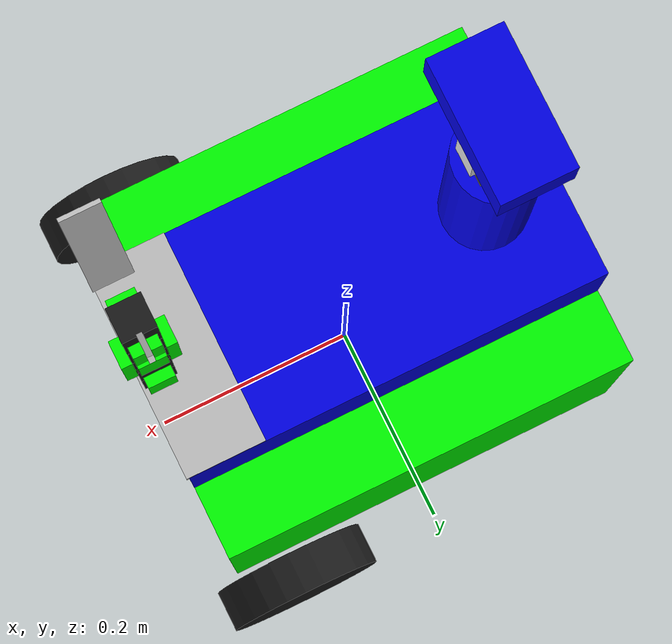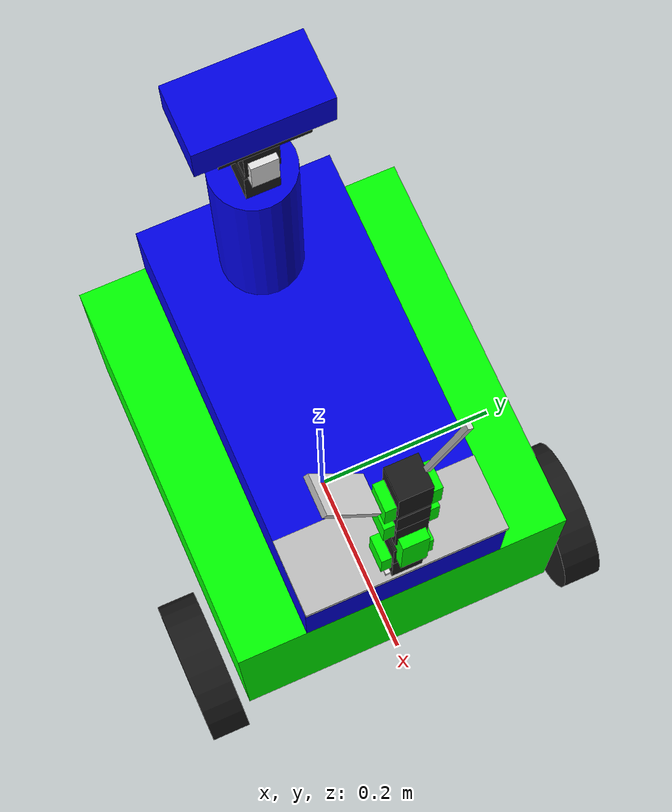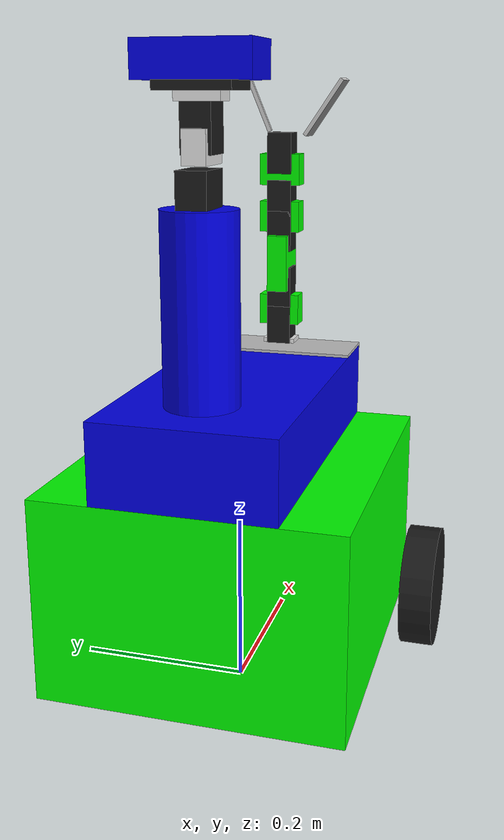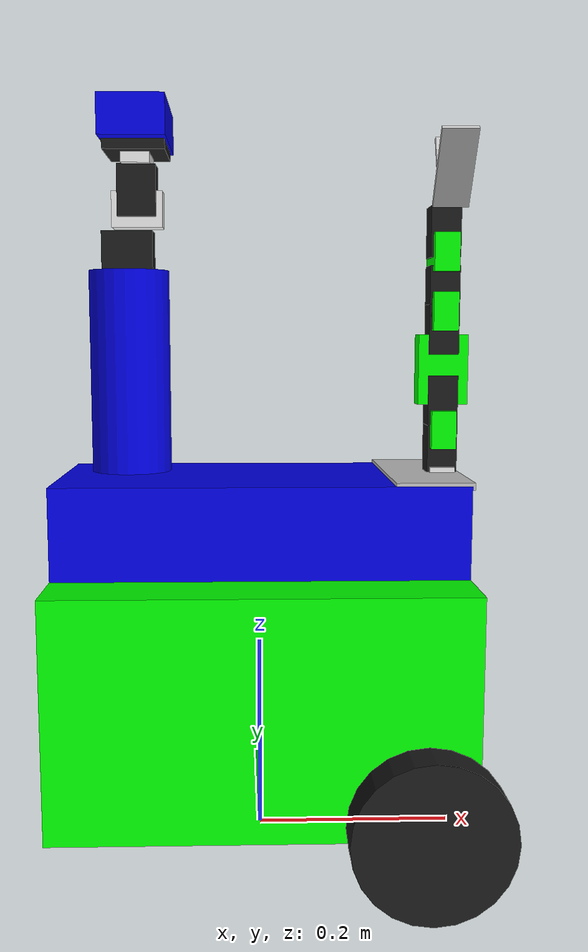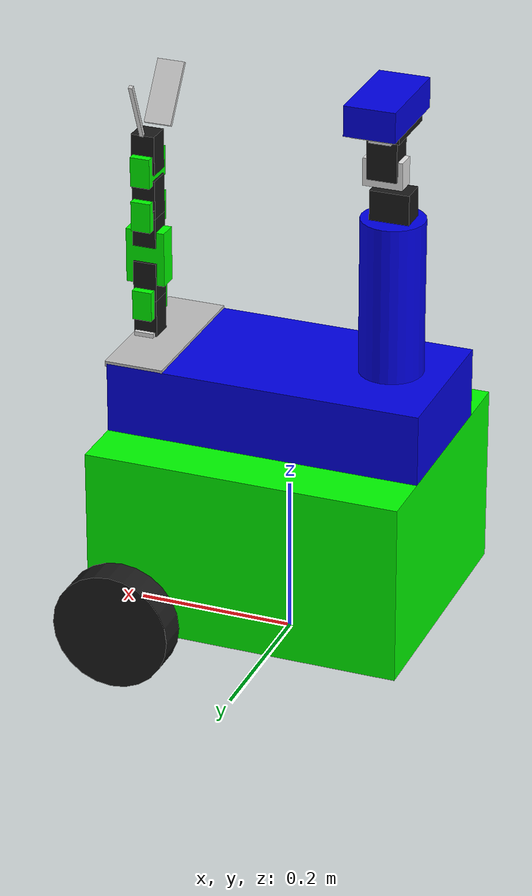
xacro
<?xml version="1.0"?>

<!-- XML namespaces -->
<robot xmlns:sensor="http://playerstage.sourceforge.net/gazebo/xmlschema/#sensor"
       xmlns:controller="http://playerstage.sourceforge.net/gazebo/xmlschema/#controller"
       xmlns:interface="http://playerstage.sourceforge.net/gazebo/xmlschema/#interface"
       xmlns:xacro="http://ros.org/wiki/xacro"

	   name="robbie">

    <property name="M_PI" value="3.14159"/>
    <property name="SCALE" value="0.0254"/>
    <property name="M_SCALE" value="0.001"/>

 	<!-- ============================  A Few Color Macros  ============================ -->

	<xacro:macro name="black">
		<material name="black">
			<color rgba="0.1 0.1 0.1 1.0"/>
		</material>
	</xacro:macro>

	<xacro:macro name="white">
		<material name="white">
			<color rgba="1.0 1.0 1.0 1.0"/>
		</material>
	</xacro:macro>

	<xacro:macro name="grey1">
		<material name="grey1">
			<color rgba="0.75 0.75 0.75 1.0"/>
		</material>
	</xacro:macro>

	<xacro:macro name="grey2">
		<material name="grey2">
			<color rgba="0.6 0.6 0.6 1.0"/>
		</material>
	</xacro:macro>

	<xacro:macro name="grey3">
		<material name="grey3">
			<color rgba="0.8 0.8 0.8 1.0"/>
		</material>
	</xacro:macro>

	<xacro:macro name="ax12_color">
		<material name="ax12_color">
			<color rgba="0.2 0.2 0.2 1.0"/>
		</material>
	</xacro:macro>

	<xacro:macro name="bracket_color">
		<material name="bracket_color">
			<color rgba="0.9 0.9 0.9 1.0"/>
		</material>
	</xacro:macro>

        <xacro:macro name="cyan1">
		<material name="cyan1">
			<color rgba="0 0.9 0.9 1.0"/>
		</material>
	</xacro:macro>

	<xacro:macro name="cyan2">
		<material name="cyan2">
	     <color rgba="0 0.7 0.7 1.0"/>
		</material>
	</xacro:macro>

	<xacro:macro name="cyan3">
		<material name="cyan3">
	     <color rgba="0 0.5 0.5 1.0"/>
		</material>
	</xacro:macro>

        <xacro:macro name="yellow2">
		<material name="yellow2">
			<color rgba="0.8 0.8 0 1.0"/>
		</material>
	</xacro:macro>

	<xacro:macro name="green1">
		<material name="green1">
			<color rgba="0 1 0 1.0"/>
		</material>
	</xacro:macro>

	<xacro:macro name="green2">
		<material name="green2">
			<color rgba="0.1 0.8 0 1.0"/>
		</material>
	</xacro:macro>

        <xacro:macro name="blue1">
		<material name="blue1">
			<color rgba="0 0 0.9 1.0"/>
		</material>
	</xacro:macro>

        <xacro:macro name="ax12_color">
		<material name="ax12_color">
			<color rgba="0.1 0.1 0.1 1.0"/>
		</material>
	</xacro:macro>

 	<!-- ============================   A Few Shape Macros  ============================ -->

	<xacro:macro name="ax12" params="name xyz rpy">
		<link name="${name}">
			<visual>
				<origin xyz="${xyz}" rpy="${rpy}" />
				<geometry>
					<box size="0.05 0.032 0.038" />
				</geometry>
				<xacro:ax12_color />
             </visual>
             <collision>
				<origin xyz="${xyz}" rpy="${rpy}" />
					<geometry>
						<box size="0.05 0.032 0.038" />
					</geometry>
             </collision>
             <xacro:default_inertial mass="0.055" />
        </link>
        <xacro:default_gazebo name="${name}" material="Gazebo/FlatBlack" />
	</xacro:macro>

	<xacro:macro name="bracket1" params="name xyz rpy">
		<link name="${name}">
			<visual>
				<origin xyz="${xyz}" rpy="${rpy}" />
				<geometry>
					<box size="0.05 0.025 0.035" />
				</geometry>
				<xacro:bracket_color />
             </visual>
             <collision>
				<origin xyz="${xyz}" rpy="${rpy}" />
					<geometry>
						<box size="0.05 0.025 0.038" />
					</geometry>
             </collision>
             <xacro:default_inertial mass="0.02" />
        </link>
        <xacro:default_gazebo name="${name}" material="Gazebo/WhiteEmissive" />
	</xacro:macro>

	<xacro:macro name="bracket_f3" params="name xyz rpy">
		<link name="${name}">
			<visual>
				<origin xyz="${xyz}" rpy="${rpy}" />
				<geometry>
					<box size="0.025 0.04 0.006" />
				</geometry>
				<xacro:bracket_color />
             </visual>
             <collision>
				<origin xyz="${xyz}" rpy="${rpy}" />
					<geometry>
						<box size="0.025 0.04 0.006" />
					</geometry>
             </collision>
             <xacro:default_inertial mass="0.02" />
        </link>
        <xacro:default_gazebo name="${name}" material="Gazebo/WhiteEmissive" />
	</xacro:macro>

	<xacro:macro name="bracket2" params="name xyz rpy">
		<link name="${name}">
			<visual>
				<origin xyz="${xyz}" rpy="${rpy}" />
				<geometry>
					<box size="0.05 0.115 0.07" />
				</geometry>
				<xacro:bracket_color />
             </visual>
             <collision>
				<origin xyz="${xyz}" rpy="${rpy}" />
					<geometry>
					<box size="0.05 0.115 0.07" />
					</geometry>
             </collision>
             <xacro:default_inertial mass="0.01" />
        </link>
        <xacro:default_gazebo name="${name}" material="Gazebo/WhiteEmissive" />
	</xacro:macro>

        <xacro:macro name="bracket3" params="name xyz rpy">
		<link name="${name}">
			<visual>
				<origin xyz="${xyz}" rpy="${rpy}" />
				<geometry>
					<box size="0.05 0.032 0.005" />
				</geometry>
				<xacro:bracket_color />
             </visual>
             <collision>
				<origin xyz="${xyz}" rpy="${rpy}" />
					<geometry>
					<box size="0.05 0.032 0.005" />
					</geometry>
             </collision>
             <xacro:default_inertial mass="0.01" />
        </link>
        <xacro:default_gazebo name="${name}" material="Gazebo/WhiteEmissive" />
	</xacro:macro>

        <xacro:macro name="h_beam" params="name xyz rpy">
		<link name="${name}">
			<visual>
				<origin xyz="${xyz}" rpy="${rpy}" />
				<geometry>
					<box size="0.025 0.11 0.01" />
				</geometry>
				<xacro:bracket_color />
             </visual>
             <collision>
				<origin xyz="${xyz}" rpy="${rpy}" />
					<geometry>
					<box size="0.025 0.11 0.01" />
					</geometry>
             </collision>
             <xacro:default_inertial mass="0.01" />
        </link>
        <xacro:default_gazebo name="${name}" material="Gazebo/WhiteEmissive" />
	</xacro:macro>

        <xacro:macro name="my_box" params="name lwh xyz rpy mass material *rviz_color">
		<link name="${name}">
			<visual>
				<origin xyz="${xyz}" rpy="${rpy}" />
				<geometry>
					<box size="${lwh}" />
				</geometry>
			    <xacro:insert_block name="rviz_color" />
             </visual>
             <collision>
				<origin xyz="${xyz}" rpy="${rpy}" />
					<geometry>
						<box size="${lwh}" />
					</geometry>
             </collision>
             <xacro:default_inertial mass="${mass}" />
        </link>
        <xacro:default_gazebo name="${name}" material="${material}" />
	</xacro:macro>

	<xacro:macro name="my_cylinder" params="name l r xyz rpy mass material *rviz_color">
		<link name="${name}">
			<visual>
				<origin xyz="${xyz}" rpy="${rpy}" />
				<geometry>
					<cylinder length="${l}" radius="${r}" />
				</geometry>
            	<xacro:insert_block name="rviz_color" />
            </visual>
            <collision>
				<origin xyz="${xyz}" rpy="${rpy}" />
					<geometry>
						<cylinder length="${l}" radius="${r}" />
					</geometry>
            </collision>
            <xacro:default_inertial mass="${mass}" />
        </link>
        <xacro:default_gazebo name="${name}" material="${material}" />
	</xacro:macro>

    <xacro:macro name="default_inertial" params="mass">
		<inertial>
			<mass value="${mass}" />
			<inertia ixx="0.001" ixy="0.0" ixz="0.0"
                     iyy="0.001" iyz="0.0"
                     izz="0.001" />
			</inertial>
    </xacro:macro>

    <xacro:macro name="default_gazebo" params="name material">
 		<gazebo reference="${name}">
			<material>${material}</material>
			<selfCollide>false</selfCollide>
			<turnGravityOff>true</turnGravityOff>
		</gazebo>
    </xacro:macro>

 	<!-- ============================   Link Definitions  ============================ -->

  <xacro:my_box name="base_link" lwh="0.4 0.34 0.23" xyz="0 0 .17" rpy="0 0 0" mass="0.1" material="Gazebo/FlatBlack">
	        <xacro:green1 />
        </xacro:my_box>

  <xacro:my_cylinder name="r_wheel_link" l="0.04" r="0.075" xyz="0 0 0" rpy="1.57 0 0" mass="0.1" material="Gazebo/FlatBlack">
		<xacro:black />
        </xacro:my_cylinder>

  <xacro:my_cylinder name="l_wheel_link" l="0.04" r="0.075" xyz="0 0 0" rpy="1.57 0 0" mass="0.1" material="Gazebo/FlatBlack">
		<xacro:black />
        </xacro:my_cylinder>

  <xacro:my_box name="deck_link" lwh="0.4 0.2 0.09" xyz="0 0 0" rpy="0 0 0" mass="0.1" material="Gazebo/FlatBlack">
	        <xacro:blue1 />
        </xacro:my_box>

  <xacro:my_box name="arm_shoulder_tilt_link" lwh="0.075 0.2 0.007" xyz="0 0 0" rpy="0 0 0" mass="2.91" material="Gazebo/Grey">
		<xacro:grey1 />
	</xacro:my_box>

  <xacro:bracket_f3 name="arm_pan_tilt_bracket" xyz="0 0 0" rpy="0 0 0">
	</xacro:bracket_f3>

  <xacro:my_box name="elbow_tilt_link" lwh="0.03 0.03 0.05" xyz="0 0 0" rpy="0 0 0" mass="0.055" material="Gazebo/FlatBlack">
	     <xacro:ax12_color />
	</xacro:my_box>

  <xacro:my_box name="arm_tilt_link" lwh="0.03 0.03 0.05" xyz="0 0 0" rpy="0 0 0" mass="0.055" material="Gazebo/FlatBlack">
	     <xacro:ax12_color />
	</xacro:my_box>

  <xacro:my_box name="arm_bracket" lwh="0.025 0.05 0.038" xyz="0 0 0.021" rpy="0 0 0" mass="0.05" material="Gazebo/WhiteEmissive">
			<xacro:green1 />
		</xacro:my_box>

  <xacro:my_box name="elbow_bracket" lwh="0.05 0.025 0.07" xyz="0 0 0.021" rpy="0 0 0" mass="0.05" material="Gazebo/WhiteEmissive">
			<xacro:green1 />
		</xacro:my_box>

  <xacro:my_box name="wrist_pan_link" lwh="0.03 0.03 0.05" xyz="0 0 0.021" rpy="0 0 0" mass="0.055" material="Gazebo/FlatBlack">
	     <xacro:ax12_color />
	</xacro:my_box>

  <xacro:my_box name="wrist_bracket" lwh="0.025 0.05 0.038" xyz="0 0 0.021" rpy="0 0 0" mass="0.05" material="Gazebo/WhiteEmissive">
			<xacro:green1 />
		</xacro:my_box>

  <xacro:my_box name="wrist_tilt_link" lwh="0.03 0.03 0.05" xyz="0 0 0.021" rpy="0 0 0" mass="0.055" material="Gazebo/FlatBlack">
	     <xacro:ax12_color />
	</xacro:my_box>

  <xacro:my_box name="gripper_bracket" lwh="0.025 0.05 0.038" xyz="0 0 0.021" rpy="0 0 0" mass="0.05" material="Gazebo/WhiteEmissive">
			<xacro:green1 />
		</xacro:my_box>

  <xacro:my_box name="gripper_link" lwh="0.03 0.03 0.05" xyz="0 0 0.021" rpy="0 0 0" mass="0.055" material="Gazebo/FlatBlack">
	     <xacro:ax12_color />
	</xacro:my_box>

  <xacro:my_box name="right_finger_link" lwh="0.035 0.005 0.08" xyz="0 0 0.08" rpy="0 0 0" mass="0.1" material="Gazebo/FlatBlack">
	        <xacro:grey3 />
        </xacro:my_box>
  <xacro:my_box name="left_finger_link" lwh="0.005 0.005 0.08" xyz="0 0 0.08" rpy="0 0 0" mass="0.1" material="Gazebo/FlatBlack">
	        <xacro:grey3 />
        </xacro:my_box>

  <xacro:my_cylinder name="torso_link" l="0.20" r="0.04" xyz="0 0 0" rpy="0 0 0" mass="0.250" material="Gazebo/WhiteEmissive">
		<xacro:blue1 />
	</xacro:my_cylinder>

	<xacro:ax12 name="head_pan_link" xyz="0 0 0" rpy="0 0 0">
	</xacro:ax12>

	<xacro:bracket1 name="pan_tilt_bracket" xyz="0 0 0" rpy="0 0 0">
	</xacro:bracket1>

	<xacro:ax12 name="head_tilt_link" xyz="0 0 0" rpy="0 1.57 0">
	</xacro:ax12>

	<xacro:my_box name="neck_link" lwh="0.028 0.048 0.01" xyz="0 0 0.02" rpy="0 0 0" mass="0.05" material="Gazebo/WhiteEmissive">
		<xacro:bracket_color />
	</xacro:my_box>

	<xacro:my_box name="head_base_link" lwh="0.06 0.08 0.01" xyz="0 0 0" rpy="0 0 0" mass="0.1" material="Gazebo/FlatBlack">
		<xacro:black />
	</xacro:my_box>

	<xacro:my_cylinder name="head_post_link" l="0.01" r="0.005" xyz="0 0 0" rpy="0 0 0" mass="0.1" material="Gazebo/WhiteEmissive">
		<xacro:grey3 />
	</xacro:my_cylinder>

    <link name="kinect_link">
  <visual>
    <geometry>
      <box size="0.064 0.121 0.0381" />
    </geometry>
    <material name="black">
         <color rgba="0 0 0.9 1.0"/>
    </material>
  </visual>
  <inertial>
      <mass value="0.0001" />
      <origin xyz="0 0 0" />
      <inertia ixx="0.0001" ixy="0.0" ixz="0.0"
               iyy="0.0001" iyz="0.0"
               izz="0.0001" />
  </inertial>
  </link>

   <!-- =================== Joint Definitions ==================== -->
  <joint name="base_link_joint" type="fixed">
    	<parent link="base_link" />
    	<child link="deck_link" />
    	<origin xyz="0 0 .33" rpy="0 0 0" />
	</joint>

  <joint name="r_wheel_joint" type="fixed">
    	<parent link="base_link" />
    	<child link="r_wheel_link" />
    	<origin xyz="0.15 0.2 0.075" rpy="0 0 0" />
	</joint>

  <joint name="l_wheel_joint" type="fixed">
    	<parent link="base_link" />
    	<child link="l_wheel_link" />
    	<origin xyz="0.15 -0.2 0.075" rpy="0 0 0" />
	</joint>

  <joint name="arm_pan_tilt_bracket" type="fixed">
    	<parent link="deck_link" />
    	<child link="arm_shoulder_tilt_link" />
    	<origin xyz="0.165 0 .045" rpy="0 0 0" />
    	<axis xyz="0 0 1" />
    	<limit lower="-3.1416" upper="3.1416" effort="10" velocity="0" />
      	<dynamics damping="0.0"/>
	</joint>

  <joint name="shoulder_pan_joint" type="revolute">
    	<parent link="arm_shoulder_tilt_link" />
    	<child link="arm_pan_tilt_bracket" />
    	<origin xyz=".02 0 .006" rpy="0 0 0" />
        <axis xyz="0 0 1" />
    	<limit lower="-1.57" upper="1.57" effort="10" velocity="0" />
	</joint>

 <joint name="arm_tilt1_joint" type="fixed">
    	<parent link="arm_pan_tilt_bracket" />
    	<child link="arm_tilt_link" />
    	<origin xyz="0 0 0.02" rpy="0 0 0" />
    	<axis xyz="0 0 0" />
    	<limit lower="-1.57" upper="1.57" effort="10" velocity="0" />
      	<dynamics damping="0.0"/>
	</joint>

  <joint name="arm_tilt_joint" type="revolute">
    	<parent link="arm_tilt_link" />
    	<child link="arm_bracket" />
    	<origin xyz="0 0 0.0" rpy="0 0 0" />
    	<axis xyz="0 1 0" />
    	<limit lower="-1.57" upper="1.57" effort="10" velocity="0" />
      	<dynamics damping="0.0"/>
	</joint>

   <joint name="arm_bracket" type="fixed">
    	<parent link="arm_bracket" />
    	<child link="elbow_tilt_link" />
    	<origin xyz="0 0 0.05" rpy="0 0 0" />
	</joint>

  <joint name="elbow_tilt_joint" type="revolute">
    	<parent link="elbow_tilt_link" />
    	<child link="elbow_bracket" />
    	<origin xyz="0 0 0.01" rpy="0 0 0" />
    	<axis xyz="0 1 0" />
    	<limit lower="-1.57" upper="1.57" effort="10" velocity="0" />
      	<dynamics damping="0.0"/>
	</joint>

  <joint name="wrist_pan_joint" type="revolute">
    	<parent link="elbow_bracket" />
    	<child link="wrist_pan_link" />
    	<origin xyz="0 0 0.04" rpy="0 0 0" />
        <axis xyz="1 0 0" />
    	<limit lower="-3.1416" upper="3.1416" effort="10" velocity="0" />
      	<dynamics damping="0.0"/>
	</joint>

  <joint name="wrist_joint" type="fixed">
    	<parent link="wrist_pan_link" />
    	<child link="wrist_bracket" />
    	<origin xyz="0 0 0.018" rpy="0 0 0" />
	</joint>

   <joint name="wrist_tilt_joint" type="revolute">
    	<parent link="wrist_bracket" />
    	<child link="wrist_tilt_link" />
    	<origin xyz="0 0 0.02" rpy="0 0 0" />
    	<axis xyz="0 1 0" />
    	<limit lower="-1.57" upper="1.57" effort="10" velocity="0" />
      	<dynamics damping="0.0"/>
	</joint>

   <joint name="gripper_bracket" type="fixed">
    	<parent link="wrist_tilt_link" />
    	<child link="gripper_bracket" />
    	<origin xyz="0 0 0.038" rpy="0 0 0" />
	</joint>

   <joint name="gripper_link" type="fixed">
    	<parent link="gripper_bracket" />
    	<child link="gripper_link" />
    	<origin xyz="0 0 0.02" rpy="0 0 0" />
    	<axis xyz="0 1 0" />
    	<limit lower="-1.57" upper="1.57" effort="10" velocity="0" />
      	<dynamics damping="0.0"/>
	</joint>

   <joint name="palm_link" type="fixed">
    	<parent link="gripper_link" />
    	<child link="left_finger_link" />
    	<origin xyz="0 0.0 0.01" rpy="-0.4 0 0" />
	</joint>

  <joint name="gripper_joint" type="revolute">
    	<parent link="gripper_link" />
    	<child link="right_finger_link" />
    	<origin xyz="0 -0.01 0.01" rpy="0.6 0 0" />
    	<axis xyz="1 0 0" />
    	<limit lower="-0.98" upper="0.15" effort="10" velocity="0" />
      	<dynamics damping="0.0"/>
	</joint>

      <joint name="torso_joint" type="fixed">
    	<parent link="deck_link" />
    	<child link="torso_link" />
    	<origin xyz="-0.13 0 0.15" rpy="0 0 0" />
	</joint>

	<joint name="head_pan_servo" type="fixed">
    	<parent link="torso_link" />
    	<child link="head_pan_link" />
    	<origin xyz="0 0 0.119" rpy="0 0 0" />
	</joint>

	<joint name="pan_tilt_bracket" type="fixed">
    	<parent link="head_pan_link" />
    	<child link="pan_tilt_bracket" />
    	<origin xyz="0.01 0 0.04" rpy="0 0 0" />
	</joint>

	<joint name="head_pan_joint" type="revolute">
    	<parent link="pan_tilt_bracket" />
    	<child link="head_tilt_link" />
    	<origin xyz="0 0 0.0175" rpy="0 0 0" />
    	<axis xyz="0 0 1" />
    	<limit lower="-3.1416" upper="3.1416" effort="10" velocity="0" />
      	<dynamics damping="0.0"/>
	</joint>

 	<joint name="head_tilt_joint" type="revolute">
    	<parent link="head_tilt_link" />
    	<child link="neck_link" />
    	<origin xyz="0 0 0.01" rpy="0 0 0" />
    	<axis xyz="0 1 0" />
    	<limit lower="-1.57" upper="1.57" effort="10" velocity="0" />
      	<dynamics damping="0.0"/>
	</joint>

 	<joint name="neck_joint" type="fixed">
    	<parent link="neck_link" />
    	<child link="head_base_link" />
    	<origin xyz="0 0 0.03" rpy="0 0 0" />
	</joint>

	<joint name="head_base_joint" type="fixed">
    	<parent link="head_base_link" />
    	<child link="head_post_link" />
    	<origin xyz="0 0 0.0" rpy="0 0 0" />
	</joint>

	<joint name="head_joint" type="fixed">
    	<parent link="head_post_link" />
    	<child link="kinect_link" />
    	<origin xyz="0 0 0.0235" rpy="0 0 0" />
	</joint>

 <joint name="kinect_depth_joint" type="fixed">
      <origin xyz="0 0.018 0" rpy="0 0 0" />
      <parent link="kinect_link" />
      <child link="kinect_depth_frame" />
    </joint>

    <link name="kinect_depth_frame">
      <inertial>
        <mass value="0.0001" />
        <origin xyz="0 0 0" />
        <inertia ixx="0.0001" ixy="0.0" ixz="0.0"
                 iyy="0.0001" iyz="0.0"
                 izz="0.0001" />
      </inertial>
    </link>

    <joint name="kinect_depth_optical_joint" type="fixed">
      <origin xyz="0 0 0" rpy="${-M_PI/2} 0 ${-M_PI/2}" />
      <parent link="kinect_depth_frame" />
      <child link="kinect_depth_optical_frame" />
    </joint>

    <link name="kinect_depth_optical_frame">
      <inertial>
        <mass value="0.0001" />
        <origin xyz="0 0 0" />
        <inertia ixx="0.0001" ixy="0.0" ixz="0.0"
                 iyy="0.0001" iyz="0.0"
                 izz="0.0001" />
      </inertial>
    </link>

    <joint name="kinect_rgb_joint" type="fixed">
      <origin xyz="0 -0.005 0" rpy="0 0 0" />
      <parent link="kinect_link" />
      <child link="kinect_rgb_frame" />
    </joint>

    <link name="kinect_rgb_frame">
      <inertial>
        <mass value="0.0001" />
        <origin xyz="0 0 0" />
        <inertia ixx="0.0001" ixy="0.0" ixz="0.0"
                 iyy="0.0001" iyz="0.0"
                 izz="0.0001" />
      </inertial>
    </link>

    <joint name="kinect_rgb_optical_joint" type="fixed">
      <origin xyz="0 0 0" rpy="${-M_PI/2} 0 ${-M_PI/2}" />
      <parent link="kinect_rgb_frame" />
      <child link="kinect_rgb_optical_frame" />
    </joint>

    <link name="kinect_rgb_optical_frame">
      <inertial>
        <mass value="0.0001" />
        <origin xyz="0 0 0" />
        <inertia ixx="0.0001" ixy="0.0" ixz="0.0"
                 iyy="0.0001" iyz="0.0"
                 izz="0.0001" />
      </inertial>
    </link>

<gazebo reference="robbie">
  	</gazebo>
</robot>
